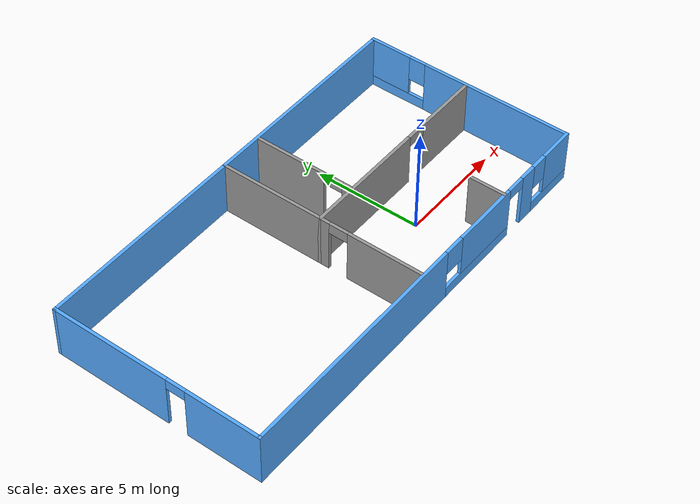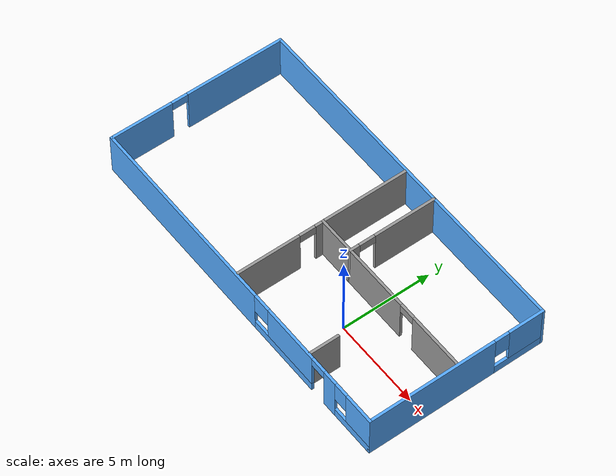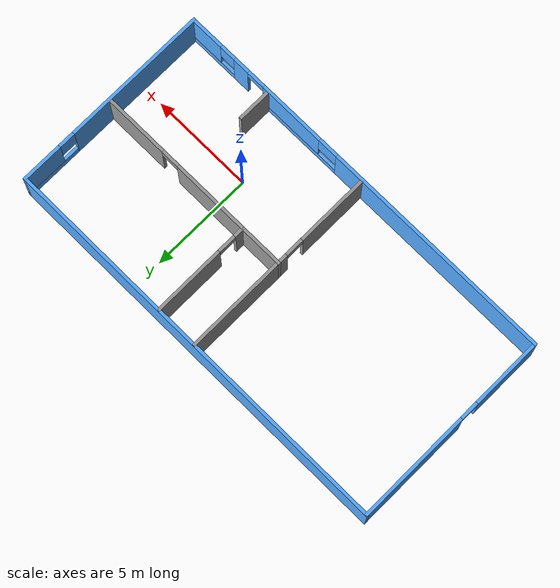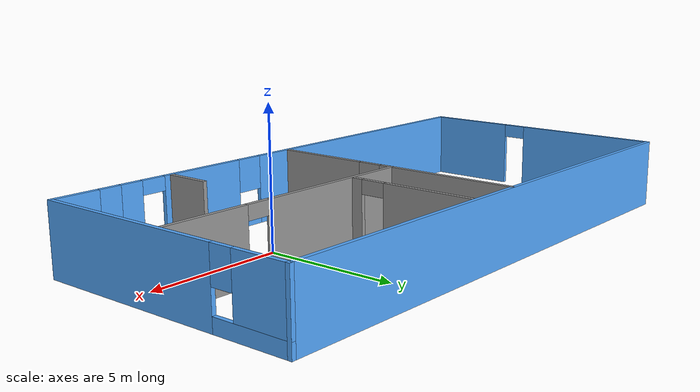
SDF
<?xml version='1.0'?>
<sdf version='1.6'>
  <model name='Building'>
    <pose frame=''>-3.89501 1.78915 0 0 -0 0</pose>
    <link name='Wall_12'>
      <pose frame=''>-9.925 0 0 0 0 -1.5708</pose>
      <visual name='Wall_12_Visual_0'>
        <pose frame=''>-2.20711 0 1.25 0 -0 0</pose>
        <geometry>
          <box>
            <size>5.58577 0.15 2.5</size>
          </box>
        </geometry>
        <material>
          <script>
            <uri>file://media/materials/scripts/gazebo.material</uri>
            <name>Gazebo/Grey</name>
          </script>
          <ambient>0.333333 0.666667 1 1</ambient>
        </material>
        <meta>
          <layer>0</layer>
        </meta>
      </visual>
      <collision name='Wall_12_Collision_0'>
        <geometry>
          <box>
            <size>5.58577 0.15 2.5</size>
          </box>
        </geometry>
        <pose frame=''>-2.20711 0 1.25 0 -0 0</pose>
      </collision>
      <visual name='Wall_12_Visual_1'>
        <pose frame=''>3.24288 0 1.25 0 -0 0</pose>
        <geometry>
          <box>
            <size>3.51423 0.15 2.5</size>
          </box>
        </geometry>
        <material>
          <script>
            <uri>file://media/materials/scripts/gazebo.material</uri>
            <name>Gazebo/Grey</name>
          </script>
          <ambient>0.333333 0.666667 1 1</ambient>
        </material>
        <meta>
          <layer>0</layer>
        </meta>
      </visual>
      <collision name='Wall_12_Collision_1'>
        <geometry>
          <box>
            <size>3.51423 0.15 2.5</size>
          </box>
        </geometry>
        <pose frame=''>3.24288 0 1.25 0 -0 0</pose>
      </collision>
      <visual name='Wall_12_Visual_2'>
        <pose frame=''>1.03577 0 2.25 0 -0 0</pose>
        <geometry>
          <box>
            <size>0.9 0.15 0.5</size>
          </box>
        </geometry>
        <material>
          <script>
            <uri>file://media/materials/scripts/gazebo.material</uri>
            <name>Gazebo/Grey</name>
          </script>
          <ambient>0.333333 0.666667 1 1</ambient>
        </material>
        <meta>
          <layer>0</layer>
        </meta>
      </visual>
      <collision name='Wall_12_Collision_2'>
        <geometry>
          <box>
            <size>0.9 0.15 0.5</size>
          </box>
        </geometry>
        <pose frame=''>1.03577 0 2.25 0 -0 0</pose>
      </collision>
    </link>
    <link name='Wall_13'>
      <pose frame=''>0 -4.925 0 0 -0 0</pose>
      <visual name='Wall_13_Visual_0'>
        <pose frame=''>-4.29 0 1.25 0 -0 0</pose>
        <geometry>
          <box>
            <size>11.42 0.15 2.5</size>
          </box>
        </geometry>
        <material>
          <script>
            <uri>file://media/materials/scripts/gazebo.material</uri>
            <name>Gazebo/Grey</name>
          </script>
          <ambient>0.333333 0.666667 1 1</ambient>
        </material>
        <meta>
          <layer>0</layer>
        </meta>
      </visual>
      <collision name='Wall_13_Collision_0'>
        <geometry>
          <box>
            <size>11.42 0.15 2.5</size>
          </box>
        </geometry>
        <pose frame=''>-4.29 0 1.25 0 -0 0</pose>
      </collision>
      <visual name='Wall_13_Visual_1'>
        <pose frame=''>7.03883 0 1.25 0 -0 0</pose>
        <geometry>
          <box>
            <size>0.825812 0.15 2.5</size>
          </box>
        </geometry>
        <material>
          <script>
            <uri>file://media/materials/scripts/gazebo.material</uri>
            <name>Gazebo/Grey</name>
          </script>
          <ambient>0.333333 0.666667 1 1</ambient>
        </material>
        <meta>
          <layer>0</layer>
        </meta>
      </visual>
      <collision name='Wall_13_Collision_1'>
        <geometry>
          <box>
            <size>0.825812 0.15 2.5</size>
          </box>
        </geometry>
        <pose frame=''>7.03883 0 1.25 0 -0 0</pose>
      </collision>
      <visual name='Wall_13_Visual_2'>
        <pose frame=''>3.57297 0 0.25 0 -0 0</pose>
        <geometry>
          <box>
            <size>4.30591 0.15 0.5</size>
          </box>
        </geometry>
        <material>
          <script>
            <uri>file://media/materials/scripts/gazebo.material</uri>
            <name>Gazebo/Grey</name>
          </script>
          <ambient>0.333333 0.666667 1 1</ambient>
        </material>
        <meta>
          <layer>0</layer>
        </meta>
      </visual>
      <collision name='Wall_13_Collision_2'>
        <geometry>
          <box>
            <size>4.30591 0.15 0.5</size>
          </box>
        </geometry>
        <pose frame=''>3.57297 0 0.25 0 -0 0</pose>
      </collision>
      <visual name='Wall_13_Visual_3'>
        <pose frame=''>8.72587 0 0.25 0 -0 0</pose>
        <geometry>
          <box>
            <size>2.54827 0.15 0.5</size>
          </box>
        </geometry>
        <material>
          <script>
            <uri>file://media/materials/scripts/gazebo.material</uri>
            <name>Gazebo/Grey</name>
          </script>
          <ambient>0.333333 0.666667 1 1</ambient>
        </material>
        <meta>
          <layer>0</layer>
        </meta>
      </visual>
      <collision name='Wall_13_Collision_3'>
        <geometry>
          <box>
            <size>2.54827 0.15 0.5</size>
          </box>
        </geometry>
        <pose frame=''>8.72587 0 0.25 0 -0 0</pose>
      </collision>
      <visual name='Wall_13_Visual_4'>
        <pose frame=''>4.07297 0 1.5 0 -0 0</pose>
        <geometry>
          <box>
            <size>3.30591 0.15 2</size>
          </box>
        </geometry>
        <material>
          <script>
            <uri>file://media/materials/scripts/gazebo.material</uri>
            <name>Gazebo/Grey</name>
          </script>
          <ambient>0.333333 0.666667 1 1</ambient>
        </material>
        <meta>
          <layer>0</layer>
        </meta>
      </visual>
      <collision name='Wall_13_Collision_4'>
        <geometry>
          <box>
            <size>3.30591 0.15 2</size>
          </box>
        </geometry>
        <pose frame=''>4.07297 0 1.5 0 -0 0</pose>
      </collision>
      <visual name='Wall_13_Visual_5'>
        <pose frame=''>4.07297 0 1.5 0 -0 0</pose>
        <geometry>
          <box>
            <size>3.30591 0.15 2</size>
          </box>
        </geometry>
        <material>
          <script>
            <uri>file://media/materials/scripts/gazebo.material</uri>
            <name>Gazebo/Grey</name>
          </script>
          <ambient>0.333333 0.666667 1 1</ambient>
        </material>
        <meta>
          <layer>0</layer>
        </meta>
      </visual>
      <collision name='Wall_13_Collision_5'>
        <geometry>
          <box>
            <size>3.30591 0.15 2</size>
          </box>
        </geometry>
        <pose frame=''>4.07297 0 1.5 0 -0 0</pose>
      </collision>
      <visual name='Wall_13_Visual_6'>
        <pose frame=''>9.12587 0 1.5 0 -0 0</pose>
        <geometry>
          <box>
            <size>1.74827 0.15 2</size>
          </box>
        </geometry>
        <material>
          <script>
            <uri>file://media/materials/scripts/gazebo.material</uri>
            <name>Gazebo/Grey</name>
          </script>
          <ambient>0.333333 0.666667 1 1</ambient>
        </material>
        <meta>
          <layer>0</layer>
        </meta>
      </visual>
      <collision name='Wall_13_Collision_6'>
        <geometry>
          <box>
            <size>1.74827 0.15 2</size>
          </box>
        </geometry>
        <pose frame=''>9.12587 0 1.5 0 -0 0</pose>
      </collision>
      <visual name='Wall_13_Visual_7'>
        <pose frame=''>1.92001 0 1.9 0 -0 0</pose>
        <geometry>
          <box>
            <size>1 0.15 1.2</size>
          </box>
        </geometry>
        <material>
          <script>
            <uri>file://media/materials/scripts/gazebo.material</uri>
            <name>Gazebo/Grey</name>
          </script>
          <ambient>0.333333 0.666667 1 1</ambient>
        </material>
        <meta>
          <layer>0</layer>
        </meta>
      </visual>
      <collision name='Wall_13_Collision_7'>
        <geometry>
          <box>
            <size>1 0.15 1.2</size>
          </box>
        </geometry>
        <pose frame=''>1.92001 0 1.9 0 -0 0</pose>
      </collision>
      <visual name='Wall_13_Visual_8'>
        <pose frame=''>7.85173 0 1.9 0 -0 0</pose>
        <geometry>
          <box>
            <size>0.8 0.15 1.2</size>
          </box>
        </geometry>
        <material>
          <script>
            <uri>file://media/materials/scripts/gazebo.material</uri>
            <name>Gazebo/Grey</name>
          </script>
          <ambient>0.333333 0.666667 1 1</ambient>
        </material>
        <meta>
          <layer>0</layer>
        </meta>
      </visual>
      <collision name='Wall_13_Collision_8'>
        <geometry>
          <box>
            <size>0.8 0.15 1.2</size>
          </box>
        </geometry>
        <pose frame=''>7.85173 0 1.9 0 -0 0</pose>
      </collision>
      <visual name='Wall_13_Visual_9'>
        <pose frame=''>6.17592 0 2.25 0 -0 0</pose>
        <geometry>
          <box>
            <size>0.9 0.15 0.5</size>
          </box>
        </geometry>
        <material>
          <script>
            <uri>file://media/materials/scripts/gazebo.material</uri>
            <name>Gazebo/Grey</name>
          </script>
          <ambient>0.333333 0.666667 1 1</ambient>
        </material>
        <meta>
          <layer>0</layer>
        </meta>
      </visual>
      <collision name='Wall_13_Collision_9'>
        <geometry>
          <box>
            <size>0.9 0.15 0.5</size>
          </box>
        </geometry>
        <pose frame=''>6.17592 0 2.25 0 -0 0</pose>
      </collision>
      <visual name='Wall_13_Visual_10'>
        <pose frame=''>6.17592 0 2.25 0 -0 0</pose>
        <geometry>
          <box>
            <size>0.9 0.15 0.5</size>
          </box>
        </geometry>
        <material>
          <script>
            <uri>file://media/materials/scripts/gazebo.material</uri>
            <name>Gazebo/Grey</name>
          </script>
          <ambient>0.333333 0.666667 1 1</ambient>
        </material>
        <meta>
          <layer>0</layer>
        </meta>
      </visual>
      <collision name='Wall_13_Collision_10'>
        <geometry>
          <box>
            <size>0.9 0.15 0.5</size>
          </box>
        </geometry>
        <pose frame=''>6.17592 0 2.25 0 -0 0</pose>
      </collision>
    </link>
    <link name='Wall_14'>
      <pose frame=''>9.925 0 0 0 -0 1.5708</pose>
      <visual name='Wall_14_Visual_0'>
        <pose frame=''>-1.42237 0 1.25 0 -0 0</pose>
        <geometry>
          <box>
            <size>7.15526 0.15 2.5</size>
          </box>
        </geometry>
        <material>
          <script>
            <uri>file://media/materials/scripts/gazebo.material</uri>
            <name>Gazebo/Grey</name>
          </script>
          <ambient>0.333333 0.666667 1 1</ambient>
        </material>
        <meta>
          <layer>0</layer>
        </meta>
      </visual>
      <collision name='Wall_14_Collision_0'>
        <geometry>
          <box>
            <size>7.15526 0.15 2.5</size>
          </box>
        </geometry>
        <pose frame=''>-1.42237 0 1.25 0 -0 0</pose>
      </collision>
      <visual name='Wall_14_Visual_1'>
        <pose frame=''>3.57763 0 0.25 0 -0 0</pose>
        <geometry>
          <box>
            <size>2.84474 0.15 0.5</size>
          </box>
        </geometry>
        <material>
          <script>
            <uri>file://media/materials/scripts/gazebo.material</uri>
            <name>Gazebo/Grey</name>
          </script>
          <ambient>0.333333 0.666667 1 1</ambient>
        </material>
        <meta>
          <layer>0</layer>
        </meta>
      </visual>
      <collision name='Wall_14_Collision_1'>
        <geometry>
          <box>
            <size>2.84474 0.15 0.5</size>
          </box>
        </geometry>
        <pose frame=''>3.57763 0 0.25 0 -0 0</pose>
      </collision>
      <visual name='Wall_14_Visual_2'>
        <pose frame=''>3.97763 0 1.5 0 -0 0</pose>
        <geometry>
          <box>
            <size>2.04474 0.15 2</size>
          </box>
        </geometry>
        <material>
          <script>
            <uri>file://media/materials/scripts/gazebo.material</uri>
            <name>Gazebo/Grey</name>
          </script>
          <ambient>0.333333 0.666667 1 1</ambient>
        </material>
        <meta>
          <layer>0</layer>
        </meta>
      </visual>
      <collision name='Wall_14_Collision_2'>
        <geometry>
          <box>
            <size>2.04474 0.15 2</size>
          </box>
        </geometry>
        <pose frame=''>3.97763 0 1.5 0 -0 0</pose>
      </collision>
      <visual name='Wall_14_Visual_3'>
        <pose frame=''>2.55526 0 1.9 0 -0 0</pose>
        <geometry>
          <box>
            <size>0.8 0.15 1.2</size>
          </box>
        </geometry>
        <material>
          <script>
            <uri>file://media/materials/scripts/gazebo.material</uri>
            <name>Gazebo/Grey</name>
          </script>
          <ambient>0.333333 0.666667 1 1</ambient>
        </material>
        <meta>
          <layer>0</layer>
        </meta>
      </visual>
      <collision name='Wall_14_Collision_3'>
        <geometry>
          <box>
            <size>0.8 0.15 1.2</size>
          </box>
        </geometry>
        <pose frame=''>2.55526 0 1.9 0 -0 0</pose>
      </collision>
    </link>
    <link name='Wall_15'>
      <collision name='Wall_15_Collision'>
        <geometry>
          <box>
            <size>20 0.15 2.5</size>
          </box>
        </geometry>
        <pose frame=''>0 0 1.25 0 -0 0</pose>
      </collision>
      <visual name='Wall_15_Visual'>
        <pose frame=''>0 0 1.25 0 -0 0</pose>
        <geometry>
          <box>
            <size>20 0.15 2.5</size>
          </box>
        </geometry>
        <material>
          <script>
            <uri>file://media/materials/scripts/gazebo.material</uri>
            <name>Gazebo/Grey</name>
          </script>
          <ambient>0.333333 0.666667 1 1</ambient>
        </material>
        <meta>
          <layer>0</layer>
        </meta>
      </visual>
      <pose frame=''>0 4.925 0 0 -0 3.14159</pose>
    </link>
    <link name='Wall_32'>
      <collision name='Wall_32_Collision'>
        <geometry>
          <box>
            <size>5 0.15 2.5</size>
          </box>
        </geometry>
        <pose frame=''>0 0 1.25 0 -0 0</pose>
      </collision>
      <visual name='Wall_32_Visual'>
        <pose frame=''>0 0 1.25 0 -0 0</pose>
        <geometry>
          <box>
            <size>5 0.15 2.5</size>
          </box>
        </geometry>
        <material>
          <script>
            <uri>file://media/materials/scripts/gazebo.material</uri>
            <name>Gazebo/Grey</name>
          </script>
          <ambient>1 1 1 1</ambient>
        </material>
        <meta>
          <layer>0</layer>
        </meta>
      </visual>
      <pose frame=''>-0.075125 2.47107 0 0 0 -1.5708</pose>
    </link>
    <link name='Wall_33'>
      <pose frame=''>4.84987 0.046075 0 0 -0 0</pose>
      <visual name='Wall_33_Visual_0'>
        <pose frame=''>-2.02208 0 1.25 0 -0 0</pose>
        <geometry>
          <box>
            <size>5.95585 0.15 2.5</size>
          </box>
        </geometry>
        <material>
          <script>
            <uri>file://media/materials/scripts/gazebo.material</uri>
            <name>Gazebo/Grey</name>
          </script>
          <ambient>1 1 1 1</ambient>
        </material>
        <meta>
          <layer>0</layer>
        </meta>
      </visual>
      <collision name='Wall_33_Collision_0'>
        <geometry>
          <box>
            <size>5.95585 0.15 2.5</size>
          </box>
        </geometry>
        <pose frame=''>-2.02208 0 1.25 0 -0 0</pose>
      </collision>
      <visual name='Wall_33_Visual_1'>
        <pose frame=''>3.42792 0 1.25 0 -0 0</pose>
        <geometry>
          <box>
            <size>3.14415 0.15 2.5</size>
          </box>
        </geometry>
        <material>
          <script>
            <uri>file://media/materials/scripts/gazebo.material</uri>
            <name>Gazebo/Grey</name>
          </script>
          <ambient>1 1 1 1</ambient>
        </material>
        <meta>
          <layer>0</layer>
        </meta>
      </visual>
      <collision name='Wall_33_Collision_1'>
        <geometry>
          <box>
            <size>3.14415 0.15 2.5</size>
          </box>
        </geometry>
        <pose frame=''>3.42792 0 1.25 0 -0 0</pose>
      </collision>
      <visual name='Wall_33_Visual_2'>
        <pose frame=''>1.40585 0 2.25 0 -0 0</pose>
        <geometry>
          <box>
            <size>0.9 0.15 0.5</size>
          </box>
        </geometry>
        <material>
          <script>
            <uri>file://media/materials/scripts/gazebo.material</uri>
            <name>Gazebo/Grey</name>
          </script>
          <ambient>1 1 1 1</ambient>
        </material>
        <meta>
          <layer>0</layer>
        </meta>
      </visual>
      <collision name='Wall_33_Collision_2'>
        <geometry>
          <box>
            <size>0.9 0.15 0.5</size>
          </box>
        </geometry>
        <pose frame=''>1.40585 0 2.25 0 -0 0</pose>
      </collision>
    </link>
    <link name='Wall_35'>
      <pose frame=''>1.99969 2.47107 0 0 0 -1.5708</pose>
      <visual name='Wall_35_Visual_0'>
        <pose frame=''>-0.732385 0 1.25 0 -0 0</pose>
        <geometry>
          <box>
            <size>3.53523 0.15 2.5</size>
          </box>
        </geometry>
        <material>
          <script>
            <uri>file://media/materials/scripts/gazebo.material</uri>
            <name>Gazebo/Grey</name>
          </script>
          <ambient>1 1 1 1</ambient>
        </material>
        <meta>
          <layer>0</layer>
        </meta>
      </visual>
      <collision name='Wall_35_Collision_0'>
        <geometry>
          <box>
            <size>3.53523 0.15 2.5</size>
          </box>
        </geometry>
        <pose frame=''>-0.732385 0 1.25 0 -0 0</pose>
      </collision>
      <visual name='Wall_35_Visual_1'>
        <pose frame=''>2.21761 0 1.25 0 -0 0</pose>
        <geometry>
          <box>
            <size>0.564771 0.15 2.5</size>
          </box>
        </geometry>
        <material>
          <script>
            <uri>file://media/materials/scripts/gazebo.material</uri>
            <name>Gazebo/Grey</name>
          </script>
          <ambient>1 1 1 1</ambient>
        </material>
        <meta>
          <layer>0</layer>
        </meta>
      </visual>
      <collision name='Wall_35_Collision_1'>
        <geometry>
          <box>
            <size>0.564771 0.15 2.5</size>
          </box>
        </geometry>
        <pose frame=''>2.21761 0 1.25 0 -0 0</pose>
      </collision>
      <visual name='Wall_35_Visual_2'>
        <pose frame=''>1.48523 0 2.25 0 -0 0</pose>
        <geometry>
          <box>
            <size>0.9 0.15 0.5</size>
          </box>
        </geometry>
        <material>
          <script>
            <uri>file://media/materials/scripts/gazebo.material</uri>
            <name>Gazebo/Grey</name>
          </script>
          <ambient>1 1 1 1</ambient>
        </material>
        <meta>
          <layer>0</layer>
        </meta>
      </visual>
      <collision name='Wall_35_Collision_2'>
        <geometry>
          <box>
            <size>0.9 0.15 0.5</size>
          </box>
        </geometry>
        <pose frame=''>1.48523 0 2.25 0 -0 0</pose>
      </collision>
    </link>
    <link name='Wall_37'>
      <pose frame=''>-0.075125 -2.37893 0 0 0 -1.5708</pose>
      <visual name='Wall_37_Visual_0'>
        <pose frame=''>-2.22638 0 1.25 0 -0 0</pose>
        <geometry>
          <box>
            <size>0.547243 0.15 2.5</size>
          </box>
        </geometry>
        <material>
          <script>
            <uri>file://media/materials/scripts/gazebo.material</uri>
            <name>Gazebo/Grey</name>
          </script>
          <ambient>1 1 1 1</ambient>
        </material>
        <meta>
          <layer>0</layer>
        </meta>
      </visual>
      <collision name='Wall_37_Collision_0'>
        <geometry>
          <box>
            <size>0.547243 0.15 2.5</size>
          </box>
        </geometry>
        <pose frame=''>-2.22638 0 1.25 0 -0 0</pose>
      </collision>
      <visual name='Wall_37_Visual_1'>
        <pose frame=''>0.723622 0 1.25 0 -0 0</pose>
        <geometry>
          <box>
            <size>3.55276 0.15 2.5</size>
          </box>
        </geometry>
        <material>
          <script>
            <uri>file://media/materials/scripts/gazebo.material</uri>
            <name>Gazebo/Grey</name>
          </script>
          <ambient>1 1 1 1</ambient>
        </material>
        <meta>
          <layer>0</layer>
        </meta>
      </visual>
      <collision name='Wall_37_Collision_1'>
        <geometry>
          <box>
            <size>3.55276 0.15 2.5</size>
          </box>
        </geometry>
        <pose frame=''>0.723622 0 1.25 0 -0 0</pose>
      </collision>
      <visual name='Wall_37_Visual_2'>
        <pose frame=''>-1.50276 0 2.25 0 -0 0</pose>
        <geometry>
          <box>
            <size>0.9 0.15 0.5</size>
          </box>
        </geometry>
        <material>
          <script>
            <uri>file://media/materials/scripts/gazebo.material</uri>
            <name>Gazebo/Grey</name>
          </script>
          <ambient>1 1 1 1</ambient>
        </material>
        <meta>
          <layer>0</layer>
        </meta>
      </visual>
      <collision name='Wall_37_Collision_2'>
        <geometry>
          <box>
            <size>0.9 0.15 0.5</size>
          </box>
        </geometry>
        <pose frame=''>-1.50276 0 2.25 0 -0 0</pose>
      </collision>
    </link>
    <link name='Wall_39'>
      <collision name='Wall_39_Collision'>
        <geometry>
          <box>
            <size>1.75 0.15 2.5</size>
          </box>
        </geometry>
        <pose frame=''>0 0 1.25 0 -0 0</pose>
      </collision>
      <visual name='Wall_39_Visual'>
        <pose frame=''>0 0 1.25 0 -0 0</pose>
        <geometry>
          <box>
            <size>1.75 0.15 2.5</size>
          </box>
        </geometry>
        <material>
          <script>
            <uri>file://media/materials/scripts/gazebo.material</uri>
            <name>Gazebo/Grey</name>
          </script>
          <ambient>1 1 1 1</ambient>
        </material>
        <meta>
          <layer>0</layer>
        </meta>
      </visual>
      <pose frame=''>5.43112 -4.0928 0 0 -0 1.5708</pose>
    </link>
    <static>1</static>
  </model>
</sdf>
